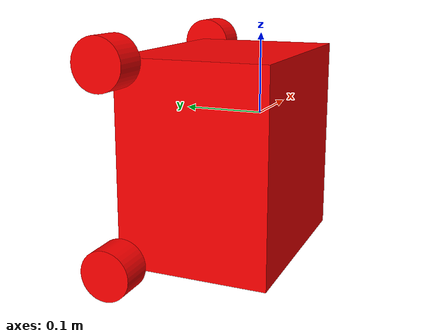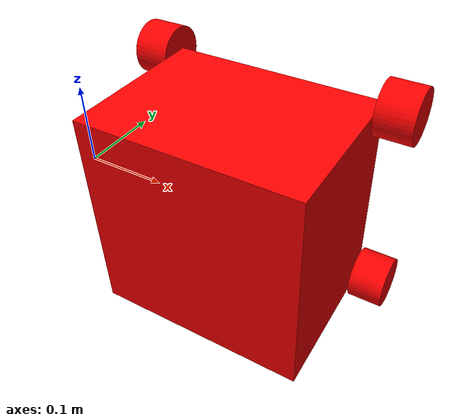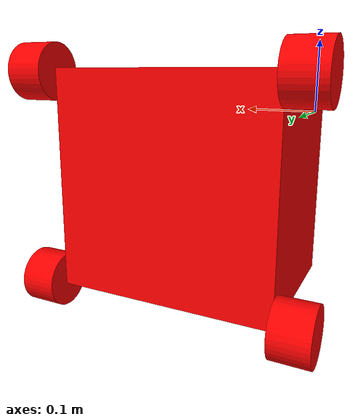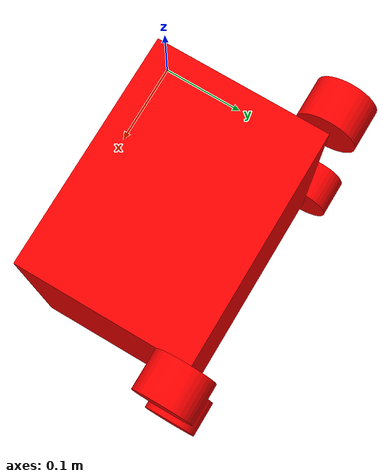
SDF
<?xml version="1.0" encoding="utf-8"?>
<sdf version="1.5">
  <model name="Assem1">
    <pose>0 0 0 0 0 0</pose>
    <plugin name="clock" filename="libgz_clock.so">
      <topic>/gazebo/frc/time</topic>
    </plugin>
    <link name="Box">
      <gravity>1</gravity>
      <self_collide>0</self_collide>
      <pose>0.145069105676851 0.0972502325598028 -0.090476788751854 0 0 0</pose>
      <must_be_base_link>1</must_be_base_link>
      <velocity_decay>
        <linear>0</linear>
        <angular>0</angular>
      </velocity_decay>
      <inertial>
        <mass>20.8502862045901</mass>
        <pose>0 0 0 0 0 0</pose>
        <inertia>
          <ixx>0.248938760332727</ixx>
          <ixy>1.40998324127395E-16</ixy>
          <ixz>1.97558348906582E-33</ixz>
          <iyy>0.32284249554608</iyy>
          <iyz>7.04991620636974E-17</iyz>
          <izz>0.248938760332727</izz>
        </inertia>
      </inertial>
      <collision name="Box_collision">
        <pose>-0.145069105676851 -0.0972502325598028 0.090476788751854 0 0 0</pose>
        <geometry>
          <mesh>
            <scale>1 1 1</scale>
            <uri>model://Assem1/meshes/Box_col.STL</uri>
          </mesh>
        </geometry>
        <surface>
          <contact>
            <ode />
          </contact>
          <friction>
            <ode>
              <mu>0</mu>
              <mu2>0</mu2>
            </ode>
          </friction>
        </surface>
      </collision>
      <visual name="Box_visual">
        <pose>-0.145069105676851 -0.0972502325598028 0.090476788751854 0 0 0</pose>
        <material>
          <ambient>1 0 0 1</ambient>
          <diffuse>1 0 0 1</diffuse>
        </material>
        <geometry>
          <mesh>
            <scale>1 1 1</scale>
            <uri>model://Assem1/meshes/Box.STL</uri>
          </mesh>
        </geometry>
      </visual>
    </link>
    <link name="Front_left">
      <gravity>1</gravity>
      <self_collide>0</self_collide>
      <pose>0.322869105676851 0.204385538994286 0.0568432112481461 0 0 0</pose>
      <must_be_base_link>0</must_be_base_link>
      <velocity_decay>
        <linear>0</linear>
        <angular>0</angular>
      </velocity_decay>
      <inertial>
        <mass>0.231666659443376</mass>
        <pose>0 0 0 0 0 0</pose>
        <inertia>
          <ixx>0.0001681448197573</ixx>
          <ixy>1.43430912401728E-21</ixy>
          <ixz>2.86861824803457E-21</ixz>
          <iyy>0.000133893097214146</iyy>
          <iyz>2.15146368602593E-21</iyz>
          <izz>0.000133893097214146</izz>
        </inertia>
      </inertial>
      <collision name="Front_left_collision">
        <pose>-0.322869105676851 -0.204385538994286 -0.0568432112481461 0 0 0</pose>
        <geometry>
          <mesh>
            <scale>1 1 1</scale>
            <uri>model://Assem1/meshes/Front_left_col.STL</uri>
          </mesh>
        </geometry>
        <surface>
          <contact>
            <ode />
          </contact>
          <friction>
            <ode>
              <mu>0</mu>
              <mu2>0</mu2>
            </ode>
          </friction>
        </surface>
      </collision>
      <visual name="Front_left_visual">
        <pose>-0.322869105676851 -0.204385538994286 -0.0568432112481461 0 0 0</pose>
        <material>
          <ambient>1 0 0 1</ambient>
          <diffuse>1 0 0 1</diffuse>
        </material>
        <geometry>
          <mesh>
            <scale>1 1 1</scale>
            <uri>model://Assem1/meshes/Front_left.STL</uri>
          </mesh>
        </geometry>
      </visual>
    </link>
    <joint name="Box-Front_left" type="revolute">
      <parent>Box</parent>
      <child>Front_left</child>
      <pose>-0.30353 0 1.38777878078145E-17 0 0 0</pose>
      <axis>
        <xyz>1 0 0</xyz>
        <dynamics>
          <damping>0</damping>
          <friction>0</friction>
        </dynamics>
        <limit>
          <upper>0</upper>
          <lower>0</lower>
          <effort>1</effort>
        </limit>
      </axis>
    </joint>
    <link name="Rear_Left">
      <gravity>1</gravity>
      <self_collide>0</self_collide>
      <pose>0.322869105676851 0.204385538994286 -0.237796788751854 0 0 0</pose>
      <must_be_base_link>0</must_be_base_link>
      <velocity_decay>
        <linear>0</linear>
        <angular>0</angular>
      </velocity_decay>
      <inertial>
        <mass>0.231666659443376</mass>
        <pose>0 0 0 0 0 0</pose>
        <inertia>
          <ixx>0.0001681448197573</ixx>
          <ixy>2.86861824803457E-21</ixy>
          <ixz>2.86861824803457E-21</ixz>
          <iyy>0.000133893097214146</iyy>
          <iyz>2.42533767230482E-21</iyz>
          <izz>0.000133893097214146</izz>
        </inertia>
      </inertial>
      <collision name="Rear_Left_collision">
        <pose>-0.322869105676851 -0.204385538994286 0.237796788751854 0 0 0</pose>
        <geometry>
          <mesh>
            <scale>1 1 1</scale>
            <uri>model://Assem1/meshes/Rear_Left_col.STL</uri>
          </mesh>
        </geometry>
        <surface>
          <contact>
            <ode />
          </contact>
          <friction>
            <ode>
              <mu>0</mu>
              <mu2>0</mu2>
            </ode>
          </friction>
        </surface>
      </collision>
      <visual name="Rear_Left_visual">
        <pose>-0.322869105676851 -0.204385538994286 0.237796788751854 0 0 0</pose>
        <material>
          <ambient>1 0 0 1</ambient>
          <diffuse>1 0 0 1</diffuse>
        </material>
        <geometry>
          <mesh>
            <scale>1 1 1</scale>
            <uri>model://Assem1/meshes/Rear_Left.STL</uri>
          </mesh>
        </geometry>
      </visual>
    </link>
    <joint name="Box-Rear_Left" type="revolute">
      <parent>Box</parent>
      <child>Rear_Left</child>
      <pose>-0.30353 0 0 0 0 0</pose>
      <axis>
        <xyz>1 0 0</xyz>
        <dynamics>
          <damping>0</damping>
          <friction>0</friction>
        </dynamics>
        <limit>
          <upper>0</upper>
          <lower>0</lower>
          <effort>1</effort>
        </limit>
      </axis>
    </joint>
    <link name="Front_Right">
      <gravity>1</gravity>
      <self_collide>0</self_collide>
      <pose>-0.0327308943231488 0.204385538994286 0.0568432112481461 0 0 0</pose>
      <must_be_base_link>0</must_be_base_link>
      <velocity_decay>
        <linear>0</linear>
        <angular>0</angular>
      </velocity_decay>
      <inertial>
        <mass>0.231666659443376</mass>
        <pose>0 0 0 0 0 0</pose>
        <inertia>
          <ixx>0.000168144819757299</ixx>
          <ixy>1.25515548733166E-36</ixy>
          <ixz>5.16448360823456E-37</ixz>
          <iyy>0.000133893097214146</iyy>
          <iyz>1.34565300887133E-20</iyz>
          <izz>0.000133893097214146</izz>
        </inertia>
      </inertial>
      <collision name="Front_Right_collision">
        <pose>0.0327308943231488 -0.204385538994286 -0.0568432112481461 0 0 0</pose>
        <geometry>
          <mesh>
            <scale>1 1 1</scale>
            <uri>model://Assem1/meshes/Front_Right_col.STL</uri>
          </mesh>
        </geometry>
        <surface>
          <contact>
            <ode />
          </contact>
          <friction>
            <ode>
              <mu>0</mu>
              <mu2>0</mu2>
            </ode>
          </friction>
        </surface>
      </collision>
      <visual name="Front_Right_visual">
        <pose>0.0327308943231488 -0.204385538994286 -0.0568432112481461 0 0 0</pose>
        <material>
          <ambient>1 0 0 1</ambient>
          <diffuse>1 0 0 1</diffuse>
        </material>
        <geometry>
          <mesh>
            <scale>1 1 1</scale>
            <uri>model://Assem1/meshes/Front_Right.STL</uri>
          </mesh>
        </geometry>
      </visual>
    </link>
    <joint name="Box-Front_Right" type="revolute">
      <parent>Box</parent>
      <child>Front_Right</child>
      <pose>0.02413 0 0 0 0 0</pose>
      <axis>
        <xyz>1 0 0</xyz>
        <dynamics>
          <damping>0</damping>
          <friction>0</friction>
        </dynamics>
        <limit>
          <upper>0</upper>
          <lower>0</lower>
          <effort>1</effort>
        </limit>
      </axis>
    </joint>
    <link name="Rear_Right">
      <gravity>1</gravity>
      <self_collide>0</self_collide>
      <pose>-0.0327308943231488 0.204385538994286 -0.237796788751854 0 0 0</pose>
      <must_be_base_link>0</must_be_base_link>
      <velocity_decay>
        <linear>0</linear>
        <angular>0</angular>
      </velocity_decay>
      <inertial>
        <mass>0.231666659443376</mass>
        <pose>0 0 0 0 0 0</pose>
        <inertia>
          <ixx>0.000168144819757299</ixx>
          <ixy>4.48221601255396E-23</ixy>
          <ixz>2.20405190779179E-36</ixz>
          <iyy>0.000133893097214146</iyy>
          <iyz>5.85952687782897E-22</iyz>
          <izz>0.000133893097214146</izz>
        </inertia>
      </inertial>
      <collision name="Rear_Right_collision">
        <pose>0.0327308943231488 -0.204385538994286 0.237796788751854 0 0 0</pose>
        <geometry>
          <mesh>
            <scale>1 1 1</scale>
            <uri>model://Assem1/meshes/Rear_Right_col.STL</uri>
          </mesh>
        </geometry>
        <surface>
          <contact>
            <ode />
          </contact>
          <friction>
            <ode>
              <mu>0</mu>
              <mu2>0</mu2>
            </ode>
          </friction>
        </surface>
      </collision>
      <visual name="Rear_Right_visual">
        <pose>0.0327308943231488 -0.204385538994286 0.237796788751854 0 0 0</pose>
        <material>
          <ambient>1 0 0 1</ambient>
          <diffuse>1 0 0 1</diffuse>
        </material>
        <geometry>
          <mesh>
            <scale>1 1 1</scale>
            <uri>model://Assem1/meshes/Rear_Right.STL</uri>
          </mesh>
        </geometry>
      </visual>
    </link>
    <joint name="Box-Rear_Right" type="revolute">
      <parent>Box</parent>
      <child>Rear_Right</child>
      <pose>0.02413 0 0 0 0 0</pose>
      <axis>
        <xyz>1 0 0</xyz>
        <dynamics>
          <damping>0</damping>
          <friction>0</friction>
        </dynamics>
        <limit>
          <upper>0</upper>
          <lower>0</lower>
          <effort>1</effort>
        </limit>
      </axis>
    </joint>
    <plugin name="Box-Front left_motor" filename="libgz_dc_motor.so">
      <joint>Box-Front_left</joint>
      <topic>/gazebo/frc/simulator/pwm/1</topic>
      <multiplier>0</multiplier>
    </plugin>
    <plugin name="Box-Rear Left_motor" filename="libgz_dc_motor.so">
      <joint>Box-Rear_Left</joint>
      <topic>/gazebo/frc/simulator/pwm/2</topic>
      <multiplier>0</multiplier>
    </plugin>
    <plugin name="Box-Front Right_motor" filename="libgz_dc_motor.so">
      <joint>Box-Front_Right</joint>
      <topic>/gazebo/frc/simulator/pwm/3</topic>
      <multiplier>0</multiplier>
    </plugin>
    <plugin name="Box-Rear Right_motor" filename="libgz_dc_motor.so">
      <joint>Box-Rear_Right</joint>
      <topic>/gazebo/frc/simulator/pwm/4</topic>
      <multiplier>0</multiplier>
    </plugin>
  </model>
</sdf>
